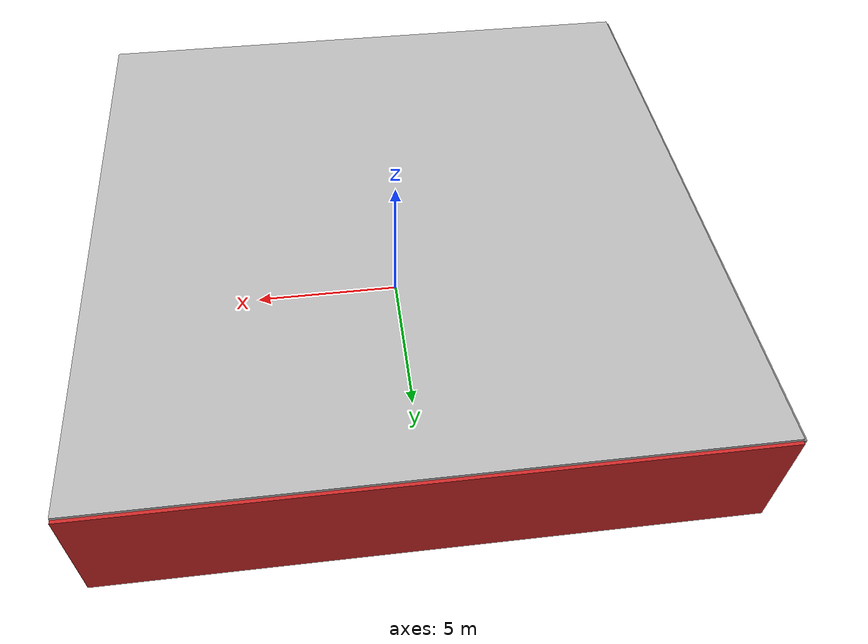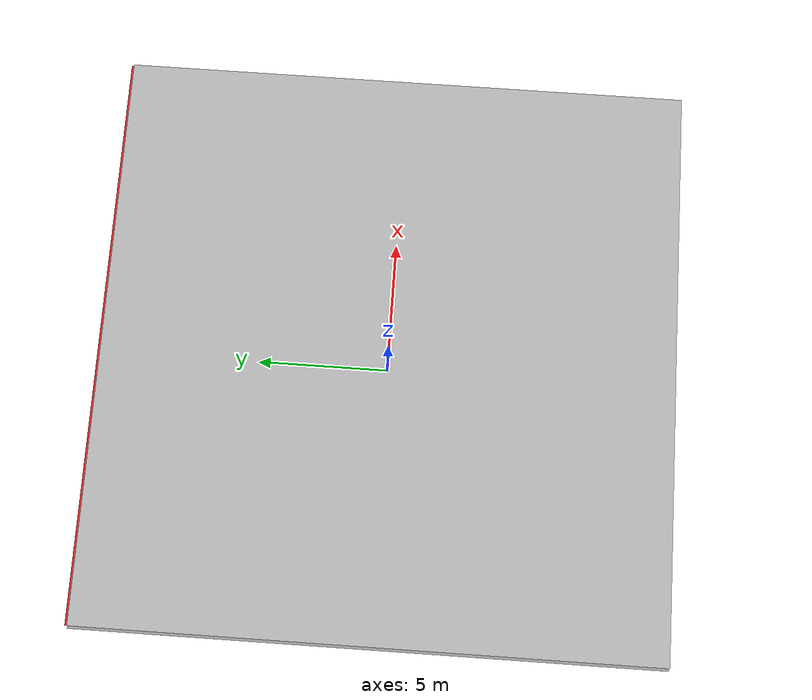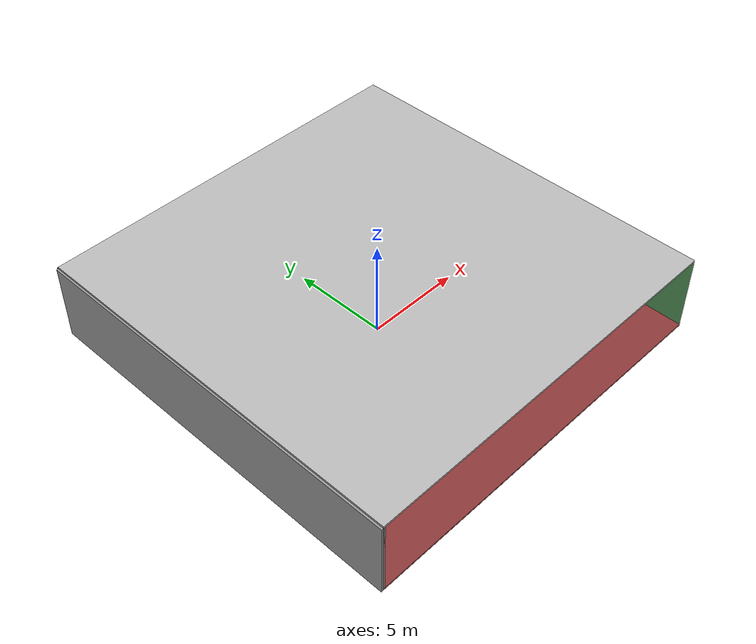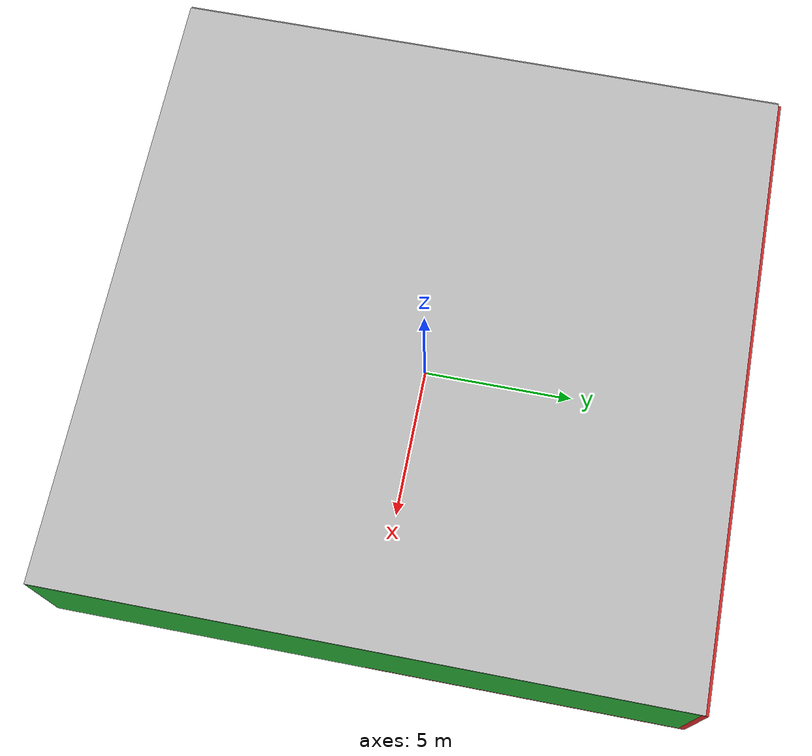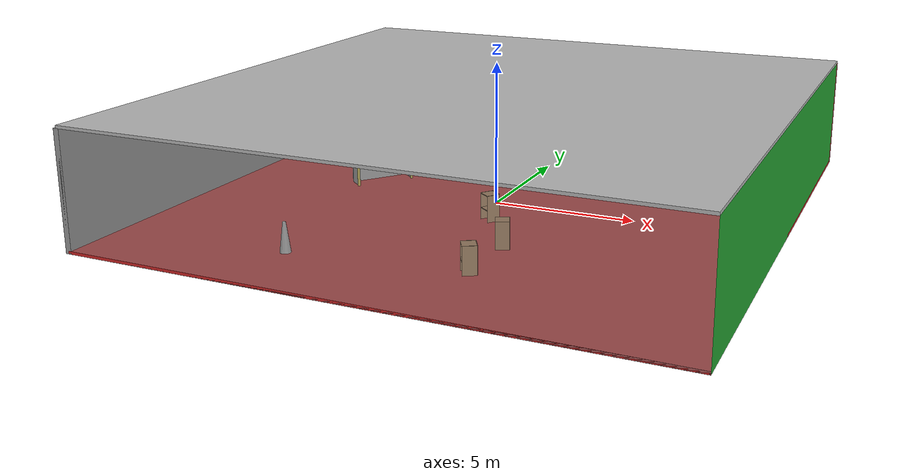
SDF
<sdf version="1.4">
 <world name="default">
  <physics type="ode">
   <max_step_size>0.001</max_step_size>
   <real_time_factor>1</real_time_factor>
   <real_time_update_rate>1000</real_time_update_rate>
   <gravity>0 0 -9.8</gravity>
  </physics>
  <scene><ambient>0.4 0.4 0.4 1</ambient><background>0.7 0.7 0.7 1</background><shadows>1</shadows></scene>
  <model name="Surrounding">
   <static>1</static>
   <link name="Ceiling">
    <collision name="Ceiling_Collision"><geometry><box><size>20 20 0.1</size></box></geometry></collision>
    <visual name="Ceiling_Visual">
     <geometry><box><size>20 20 0.1</size></box></geometry>
     <material>
      <script><uri>file://media/materials/scripts/gazebo.material</uri><name>Gazebo/PioneerBody</name></script>
     </material>
    </visual>
    <pose>0 0 4.05 0 0 0</pose>
   </link>
   <link name="Wall_South">
    <collision name="Wall_South_Collision">
     <geometry><box><size>20 0 4</size></box></geometry>
     <pose>0 0 2 0 -0 0</pose>
    </collision>
    <visual name="Wall_South_Visual">
     <pose>0 0 2 0 -0 0</pose>
     <geometry><box><size>20 0 4</size></box></geometry>
     <material>
      <script><uri>file://media/materials/scripts/gazebo.material</uri><name>Gazebo/GreyTransparent</name></script>
     </material>
    </visual>
    <velocity_decay><linear>0</linear><angular>0</angular></velocity_decay>
    <pose>0 -10 0 0 -0 0</pose>
   </link>
   <link name="Wall_East">
    <collision name="Wall_21_Collision">
     <geometry><box><size>20 0 4</size></box></geometry>
     <pose>0 0 2 0 -0 0</pose>
    </collision>
    <visual name="Wall_21_Visual">
     <pose>0 0 2 0 -0 0</pose>
     <geometry><box><size>20 0 4</size></box></geometry>
     <material>
      <script><uri>file://media/materials/scripts/gazebo.material</uri><name>Gazebo/Green</name></script>
     </material>
    </visual>
    <velocity_decay><linear>0</linear><angular>0</angular></velocity_decay>
    <pose>10 0 0 0 -0 1.5708</pose>
   </link>
   <link name="Wall_North">
    <collision name="Wall_22_Collision">
     <geometry><box><size>20 0.2 4</size></box></geometry>
     <pose>0 0 2 0 -0 0</pose>
    </collision>
    <visual name="Wall_22_Visual">
     <pose>0 0 2 0 -0 0</pose>
     <geometry><box><size>20 0.2 4</size></box></geometry>
     <material>
      <script><uri>file://media/materials/scripts/gazebo.material</uri><name>Gazebo/RedBright</name></script>
     </material>
    </visual>
    <velocity_decay><linear>0</linear><angular>0</angular></velocity_decay>
    <pose>0 10 0 0 -0 0</pose>
   </link>
   <link name="Wall_West">
    <collision name="Wall_23_Collision">
     <geometry><box><size>20 0.2 4</size></box></geometry>
     <pose>0 0 2 0 -0 0</pose>
    </collision>
    <visual name="Wall_23_Visual">
     <pose>0 0 2 0 -0 0</pose>
     <geometry><box><size>20 0.2 4</size></box></geometry>
     <material>
      <script><uri>file://media/materials/scripts/gazebo.material</uri><name>Gazebo/Grey</name></script>
     </material>
    </visual>
    <velocity_decay><linear>0</linear><angular>0</angular></velocity_decay>
    <pose>-10 0 0 0 0 -1.5708</pose>
   </link>
   <link name="Ground_link">
    <collision name="collision">
     <pose>0 0 .05 0 -0 0</pose>
     <geometry><box><size>20 20 0.1</size></box></geometry>
    </collision>
    <visual name="visual">
     <pose>0 0 .05 0 -0 0</pose>
     <geometry><box><size>20 20 0.1</size></box></geometry>
     <material>
      <script><uri>file://media/materials/scripts/gazebo.material</uri><name>Gazebo/Red</name></script>
     </material>
    </visual>
   </link>
   <static>1</static>
  </model>
  <spherical_coordinates>
   <surface_model>EARTH_WGS84</surface_model>
   <latitude_deg>0</latitude_deg>
   <longitude_deg>0</longitude_deg>
   <elevation>0</elevation>
   <heading_deg>0</heading_deg>
  </spherical_coordinates>
  <light name="lightball_0" type="diffuse">
   <diffuse>0.8 0.8 0.8 1</diffuse>
   <specular>0.2 0.2 0.2 1</specular>
   <attenuation>
    <range>100</range>
    <constant>0.7</constant>
    <linear>0.01</linear>
    <quadratic>0.001</quadratic>
   </attenuation>
   <direction>-0.5 0.1 -0.9</direction>
   <pose>-3.06103035149 -0.696313234479 3.22025920845 0 0 0</pose>
  </light>
  <light name="lightball_1" type="diffuse">
   <diffuse>0.8 0.8 0.8 1</diffuse>
   <specular>0.2 0.2 0.2 1</specular>
   <attenuation>
    <range>100</range>
    <constant>0.7</constant>
    <linear>0.01</linear>
    <quadratic>0.001</quadratic>
   </attenuation>
   <direction>-0.5 0.1 -0.9</direction>
   <pose>1.01758386504 9.75574762178 1.40313017671 0 0 0</pose>
  </light>
  <light name="lightball_2" type="diffuse">
   <diffuse>0.8 0.8 0.8 1</diffuse>
   <specular>0.2 0.2 0.2 1</specular>
   <attenuation>
    <range>100</range>
    <constant>0.7</constant>
    <linear>0.01</linear>
    <quadratic>0.001</quadratic>
   </attenuation>
   <direction>-0.5 0.1 -0.9</direction>
   <pose>-8.62487794483 6.98304111848 2.88955154263 0 0 0</pose>
  </light>
  <light name="lightball_3" type="diffuse">
   <diffuse>0.8 0.8 0.8 1</diffuse>
   <specular>0.2 0.2 0.2 1</specular>
   <attenuation>
    <range>100</range>
    <constant>0.7</constant>
    <linear>0.01</linear>
    <quadratic>0.001</quadratic>
   </attenuation>
   <direction>-0.5 0.1 -0.9</direction>
   <pose>-4.32149297782 2.42969395952 2.85858293861 0 0 0</pose>
  </light>
  <light name="lightball_4" type="diffuse">
   <diffuse>0.8 0.8 0.8 1</diffuse>
   <specular>0.2 0.2 0.2 1</specular>
   <attenuation>
    <range>100</range>
    <constant>0.7</constant>
    <linear>0.01</linear>
    <quadratic>0.001</quadratic>
   </attenuation>
   <direction>-0.5 0.1 -0.9</direction>
   <pose>-9.11413728652 3.82313294082 3.32931423854 0 0 0</pose>
  </light>
  <light name="lightball_5" type="diffuse">
   <diffuse>0.8 0.8 0.8 1</diffuse>
   <specular>0.2 0.2 0.2 1</specular>
   <attenuation>
    <range>100</range>
    <constant>0.7</constant>
    <linear>0.01</linear>
    <quadratic>0.001</quadratic>
   </attenuation>
   <direction>-0.5 0.1 -0.9</direction>
   <pose>-9.11621606208 5.59128462698 3.58940871523 0 0 0</pose>
  </light>
  <light name="lightball_6" type="diffuse">
   <diffuse>0.8 0.8 0.8 1</diffuse>
   <specular>0.2 0.2 0.2 1</specular>
   <attenuation>
    <range>100</range>
    <constant>0.7</constant>
    <linear>0.01</linear>
    <quadratic>0.001</quadratic>
   </attenuation>
   <direction>-0.5 0.1 -0.9</direction>
   <pose>2.89280802073 -6.96516160631 1.07848024122 0 0 0</pose>
  </light>
  <light name="lightball_7" type="diffuse">
   <diffuse>0.8 0.8 0.8 1</diffuse>
   <specular>0.2 0.2 0.2 1</specular>
   <attenuation>
    <range>100</range>
    <constant>0.7</constant>
    <linear>0.01</linear>
    <quadratic>0.001</quadratic>
   </attenuation>
   <direction>-0.5 0.1 -0.9</direction>
   <pose>5.58113693185 0.649460855954 3.59768630294 0 0 0</pose>
  </light>
  <light name="lightball_8" type="diffuse">
   <diffuse>0.8 0.8 0.8 1</diffuse>
   <specular>0.2 0.2 0.2 1</specular>
   <attenuation>
    <range>100</range>
    <constant>0.7</constant>
    <linear>0.01</linear>
    <quadratic>0.001</quadratic>
   </attenuation>
   <direction>-0.5 0.1 -0.9</direction>
   <pose>0.939963295395 8.74595585687 2.10680637629 0 0 0</pose>
  </light>
  <include>
   <uri>model://construction_cone</uri>
   <pose>-3.82947414924 -7.36905018939 0 0 0 0.00452178743106</pose>
  </include>
  <include>
   <uri>model://robocup_3Dsim_goal</uri>
   <pose>-4.66383905695 0.353288076339 0 0 0 2.48058453325</pose>
  </include>
  <include>
   <uri>model://robocup_3Dsim_goal</uri>
   <pose>-4.75234987303 4.92218016931 0 0 0 3.05553623328</pose>
  </include>
  <include>
   <uri>model://construction_cone</uri>
   <pose>-0.350860448906 2.0641451617 0 0 0 2.30307726985</pose>
  </include>
  <include><uri>model://cabinet</uri><pose>-0.562080968622 8.43715409309 0 0 0 1.95578874032</pose></include>
  <include><uri>model://cabinet</uri><pose>2.04332487669 -6.63342321658 0 0 0 0.543215005761</pose></include>
  <include><uri>model://cabinet</uri><pose>2.08668325511 -4.30323451596 0 0 0 0.411984267087</pose></include>
  <include><uri>model://cabinet</uri><pose>0.660133323026 -2.04630309994 0 0 0 0.924608156342</pose></include>
  <include>
   <uri>model://robocup_3Dsim_goal</uri>
   <pose>3.56662667392 4.20205543144 0 0 0 1.29011490091</pose>
  </include>
  <include><uri>model://table</uri><pose>7.48479770078 8.47360501052 0 0 0 0.458415060221</pose></include>
 </world>
</sdf>

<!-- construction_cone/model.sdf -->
<sdf version="1.5">
  <model name="Construction Cone">
    <link name="link">
      <collision name="collision">
        <geometry>
          <mesh>
            <scale>10 10 10</scale>
            <uri>file://isr-testbed/construction_cone/meshes/construction_cone.dae</uri>
          </mesh>
        </geometry>
      </collision>
      <visual name="visual">
        <geometry>
          <mesh>
            <scale>10 10 10</scale>
            <uri>file://isr-testbed/construction_cone/meshes/construction_cone.dae</uri>
          </mesh>
        </geometry>
      </visual>
    </link>
  </model>
</sdf>

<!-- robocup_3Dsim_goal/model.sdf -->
<sdf version="1.5">
  <model name="robocup_3d_goal">
    <static>true</static>
    <link name="left_post">
      <pose>0 1.05 0.45 0 0 0</pose>
      <collision name="collision">
        <geometry>
          <cylinder>
            <radius>0.05</radius>
            <length>0.9</length>
          </cylinder>
        </geometry>
      </collision>
      <visual name="visual">
        <geometry>
          <cylinder>
            <radius>0.05</radius>
            <length>0.9</length>
          </cylinder>
        </geometry>
        <material>
          <script>
            <uri>file://media/materials/scripts/gazebo.material</uri>
            <name>Gazebo/ZincYellow</name>
          </script>
        </material>
      </visual>
    </link>
    <link name="left_support_horiz_lower">
      <pose>0.30 1.05 0.01 0 0 0</pose>
      <collision name="collision">
        <geometry>
          <box>
            <size>0.50 0.02 0.02</size>
          </box>
        </geometry>
      </collision>
      <visual name="visual">
        <geometry>
          <box>
            <size>0.50 0.02 0.02</size>
          </box>
        </geometry>
        <material>
          <script>
            <uri>file://media/materials/scripts/gazebo.material</uri>
            <name>Gazebo/White</name>
          </script>
        </material>
      </visual>
    </link>
    <link name="left_support_horiz_upper">
      <pose>0.30 1.05 0.79 0 0 0</pose>
      <collision name="collision">
        <geometry>
          <box>
            <size>0.50 0.02 0.02</size>
          </box>
        </geometry>
      </collision>
      <visual name="visual">
        <geometry>
          <box>
            <size>0.50 0.02 0.02</size>
          </box>
        </geometry>
        <material>
          <script>
            <uri>file://media/materials/scripts/gazebo.material</uri>
            <name>Gazebo/White</name>
          </script>
        </material>
      </visual>
    </link>
    <link name="left_support_vertical">
      <pose>0.56 1.05 0.4 0 1.5708 0</pose>
      <collision name="collision">
        <geometry>
          <box>
            <size>0.80 0.02 0.02</size>
          </box>
        </geometry>
      </collision>
      <visual name="visual">
        <geometry>
          <box>
            <size>0.80 0.02 0.02</size>
          </box>
        </geometry>
        <material>
          <script>
            <uri>file://media/materials/scripts/gazebo.material</uri>
            <name>Gazebo/White</name>
          </script>
        </material>
      </visual>
    </link>
    <link name="right_support_horiz_lower">
      <pose>0.30 -1.05 0.01 0 0 0</pose>
      <collision name="collision">
        <geometry>
          <box>
            <size>0.50 0.02 0.02</size>
          </box>
        </geometry>
      </collision>
      <visual name="visual">
        <geometry>
          <box>
            <size>0.50 0.02 0.02</size>
          </box>
        </geometry>
        <material>
          <script>
            <uri>file://media/materials/scripts/gazebo.material</uri>
            <name>Gazebo/White</name>
          </script>
        </material>
      </visual>
    </link>
    <link name="right_support_horiz_upper">
      <pose>0.30 -1.05 0.79 0 0 0</pose>
      <collision name="collision">
        <geometry>
          <box>
            <size>0.50 0.02 0.02</size>
          </box>
        </geometry>
      </collision>
      <visual name="visual">
        <geometry>
          <box>
            <size>0.50 0.02 0.02</size>
          </box>
        </geometry>
        <material>
          <script>
            <uri>file://media/materials/scripts/gazebo.material</uri>
            <name>Gazebo/White</name>
          </script>
        </material>
      </visual>
    </link>
    <link name="right_support_vertical">
      <pose>0.56 -1.05 0.4 0 1.5708 0</pose>
      <collision name="collision">
        <geometry>
          <box>
            <size>0.80 0.02 0.02</size>
          </box>
        </geometry>
      </collision>
      <visual name="visual">
        <geometry>
          <box>
            <size>0.80 0.02 0.02</size>
          </box>
        </geometry>
        <material>
          <script>
            <uri>file://media/materials/scripts/gazebo.material</uri>
            <name>Gazebo/White</name>
          </script>
        </material>
      </visual>
    </link>
    <link name="center_support_horiz_lower">
      <pose>0.56 0 0.01 0 1.5708 0</pose>
      <collision name="collision">
        <geometry>
          <box>
            <size>0.02 2.08 0.02</size>
          </box>
        </geometry>
      </collision>
      <visual name="visual">
        <geometry>
          <box>
            <size>0.02 2.08 0.02</size>
          </box>
        </geometry>
        <material>
          <script>
            <uri>file://media/materials/scripts/gazebo.material</uri>
            <name>Gazebo/White</name>
          </script>
        </material>
      </visual>
    </link>
    <link name="center_support_horiz_upper">
      <pose>0.56 0 0.79 0 1.5708 0</pose>
      <collision name="collision">
        <geometry>
          <box>
            <size>0.02 2.08 0.02</size>
          </box>
        </geometry>
      </collision>
      <visual name="visual">
        <geometry>
          <box>
            <size>0.02 2.08 0.02</size>
          </box>
        </geometry>
        <material>
          <script>
            <uri>file://media/materials/scripts/gazebo.material</uri>
            <name>Gazebo/White</name>
          </script>
        </material>
      </visual>
    </link>
    <link name="right_post">
      <pose>0 -1.05 0.45 0 0 0</pose>
      <collision name="collision">
        <geometry>
          <cylinder>
            <radius>0.05</radius>
            <length>0.9</length>
          </cylinder>
        </geometry>
      </collision>
      <visual name="visual">
        <geometry>
          <cylinder>
            <radius>0.05</radius>
            <length>0.9</length>
          </cylinder>
        </geometry>
        <material>
          <script>
            <uri>file://media/materials/scripts/gazebo.material</uri>
            <name>Gazebo/ZincYellow</name>
          </script>
        </material>
      </visual>
    </link>
    <link name="crossbar">
      <pose>0 0 0.85 1.57 1.57 0</pose>
      <collision name="collision">
        <geometry>
          <cylinder>
            <radius>0.05</radius>
            <length>2.0</length>
          </cylinder>
        </geometry>
      </collision>
      <visual name="visual">
        <geometry>
          <cylinder>
            <radius>0.05</radius>
            <length>2.0</length>
          </cylinder>
        </geometry>
        <material>
          <script>
            <uri>file://media/materials/scripts/gazebo.material</uri>
            <name>Gazebo/ZincYellow</name>
          </script>
        </material>
      </visual>
    </link>
    <link name="center_net">
      <pose>0.56 0 0.40 0 0 0</pose>
      <collision name="collision">
        <geometry>
          <box>
            <size>0.01 2.1 0.80</size>
          </box>
        </geometry>
      </collision>
      <visual name="visual">
        <geometry>
          <box>
            <size>0.01 2.1 0.80</size>
          </box>
        </geometry>
        <material>
          <script>
            <uri>model://../model_source/models/robocup09_spl_field/materials/scripts/</uri>
            <uri>model://../model_source/models/robocup09_spl_field/materials/textures/</uri>
            <name>RoboCup/Net</name>
          </script>
        </material>
      </visual>
    </link>
    <link name="left_net">
      <pose>0.30 1.05 0.40 0 0 0</pose>
      <collision name="collision">
        <geometry>
          <box>
            <size>0.50 0.01 0.76</size>
          </box>
        </geometry>
      </collision>
      <visual name="visual">
        <geometry>
          <box>
            <size>0.50 0.01 0.76</size>
          </box>
        </geometry>
        <material>
          <script>
            <uri>model://../model_source/models/robocup09_spl_field/materials/scripts/</uri>
            <uri>model://../model_source/models/robocup09_spl_field/materials/textures/</uri>
            <name>RoboCup/Net</name>
          </script>
        </material>
      </visual>
    </link>
    <link name="right_net">
      <pose>0.30 -1.05 0.40 0 0 0</pose>
      <collision name="collision">
        <geometry>
          <box>
            <size>0.50 0.01 0.76</size>
          </box>
        </geometry>
      </collision>
      <visual name="visual">
        <geometry>
          <box>
            <size>0.50 0.01 0.76</size>
          </box>
        </geometry>
        <material>
          <script>
            <uri>model://../model_source/models/robocup09_spl_field/materials/scripts/</uri>
            <uri>model://../model_source/models/robocup09_spl_field/materials/textures/</uri>
            <name>RoboCup/Net</name>
          </script>
        </material>
      </visual>
    </link>
  </model>
</sdf>

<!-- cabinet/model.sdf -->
<sdf version="1.5">
  <model name="cabinet">
    <static>true</static>
    <link name="cabinet_bottom_plate">
      <inertial>
        <pose>0 0 -1 0 0 0</pose>
        <inertia>
          <ixx>2.050000</ixx>
          <ixy>0</ixy>
          <ixz>0</ixz>
          <iyy>2.050000</iyy>
          <iyz>0</iyz>
          <izz>2.050000</izz>
        </inertia>
        <mass>25.000000</mass>
      </inertial>
      <collision name="cabinet_bottom_plate_geom">
        <pose>0 0 0.010000 0 0 0</pose>
        <geometry>
          <box>
            <size>0.450000 0.450000 0.020000</size>
          </box>
        </geometry>
      </collision>
      <visual name="cabinet_bottom_plate_geom_visual">
        <pose>0 0 0.010000 0 0 0</pose>
        <geometry>
          <box>
            <size>0.450000 0.450000 0.020000</size>
          </box>
        </geometry>
        <material>
          <script>
            <uri>model://media/materials/scripts/gazebo.material</uri>
            <name>Gazebo/Wood</name>
          </script>
        </material>
      </visual>
      <collision name="cabinet_bottom_plate_geom_cabinet_back_plate">
        <pose>0.235000 0 0.510000 0 0 0</pose>
        <geometry>
          <box>
            <size>0.020000 0.450000 1.020000</size>
          </box>
        </geometry>
      </collision>
      <visual name="cabinet_bottom_plate_geom_cabinet_back_plate_visual">
        <pose>0.235000 0 0.510000 0 0 0</pose>
        <geometry>
          <box>
            <size>0.020000 0.450000 1.020000</size>
          </box>
        </geometry>
        <material>
          <script>
            <uri>model://media/materials/scripts/gazebo.material</uri>
            <name>Gazebo/Wood</name>
          </script>
        </material>
      </visual>
      <collision name="cabinet_bottom_plate_geom_cabinet_left_plate">
        <pose>0 0.235000 0.510000 0 0 0</pose>
        <geometry>
          <box>
            <size>0.450000 0.020000 1.020000</size>
          </box>
        </geometry>
      </collision>
      <visual name="cabinet_bottom_plate_geom_cabinet_left_plate_visual">
        <pose>0 0.235000 0.510000 0 0 0</pose>
        <geometry>
          <box>
            <size>0.450000 0.020000 1.020000</size>
          </box>
        </geometry>
        <material>
          <script>
            <uri>model://media/materials/scripts/gazebo.material</uri>
            <name>Gazebo/Wood</name>
          </script>
        </material>
      </visual>
      <collision name="cabinet_bottom_plate_geom_cabinet_middle_plate">
        <pose>0 0 0.510000 0 0 0</pose>
        <geometry>
          <box>
            <size>0.450000 0.450000 0.020000</size>
          </box>
        </geometry>
      </collision>
      <visual name="cabinet_bottom_plate_geom_cabinet_middle_plate_visual">
        <pose>0 0 0.510000 0 0 0</pose>
        <geometry>
          <box>
            <size>0.450000 0.450000 0.020000</size>
          </box>
        </geometry>
        <material>
          <script>
            <uri>model://media/materials/scripts/gazebo.material</uri>
            <name>Gazebo/Wood</name>
          </script>
        </material>
      </visual>
      <collision name="cabinet_bottom_plate_geom_cabinet_right_plate">
        <pose>0 -0.235000 0.510000 0 0 0</pose>
        <geometry>
          <box>
            <size>0.450000 0.020000 1.020000</size>
          </box>
        </geometry>
      </collision>
      <visual name="cabinet_bottom_plate_geom_cabinet_right_plate_visual">
        <pose>0 -0.235000 0.510000 0 0 0</pose>
        <geometry>
          <box>
            <size>0.450000 0.020000 1.020000</size>
          </box>
        </geometry>
        <material>
          <script>
            <uri>model://media/materials/scripts/gazebo.material</uri>
            <name>Gazebo/Wood</name>
          </script>
        </material>
      </visual>
      <collision name="cabinet_bottom_plate_geom_cabinet_top_plate">
        <pose>0 0 1.010000 0 0 0</pose>
        <geometry>
          <box>
            <size>0.450000 0.450000 0.020000</size>
          </box>
        </geometry>
      </collision>
      <visual name="cabinet_bottom_plate_geom_cabinet_top_plate_visual">
        <pose>0 0 1.010000 0 0 0</pose>
        <geometry>
          <box>
            <size>0.450000 0.450000 0.020000</size>
          </box>
        </geometry>
        <material>
          <script>
            <uri>model://media/materials/scripts/gazebo.material</uri>
            <name>Gazebo/Wood</name>
          </script>
        </material>
      </visual>
    </link>
  </model>
</sdf>

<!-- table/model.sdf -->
<sdf version="1.5">
  <model name="table">
    <static>true</static>
    <link name="link">
      <collision name="surface">
        <pose>0 0 1.0 0 0 0</pose>
        <geometry>
          <box>
            <size>1.5 0.8 0.03</size>
          </box>
        </geometry>
        <surface>
          <friction>
            <ode>
              <mu>0.6</mu>
              <mu2>0.6</mu2>
            </ode>
          </friction>
        </surface>
      </collision>
      <visual name="visual1">
        <pose>0 0 1.0 0 0 0</pose>
        <geometry>
          <box>
            <size>1.5 0.8 0.03</size>
          </box>
        </geometry>
        <material>
          <script>
            <uri>model://media/materials/scripts/gazebo.material</uri>
            <name>Gazebo/Wood</name>
          </script>
        </material>
      </visual>
      <collision name="front_left_leg">
        <pose>0.68 0.38 0.5 0 0 0</pose>
        <geometry>
          <cylinder>
            <radius>0.02</radius>
            <length>1.0</length>
          </cylinder>
        </geometry>
      </collision>
      <visual name="front_left_leg">
        <pose>0.68 0.38 0.5 0 0 0</pose>
        <geometry>
          <cylinder>
            <radius>0.02</radius>
            <length>1.0</length>
          </cylinder>
        </geometry>
        <material>
          <script>
            <uri>model://media/materials/scripts/gazebo.material</uri>
            <name>Gazebo/Grey</name>
          </script>
        </material>
      </visual>
      <collision name="front_right_leg">
        <pose>0.68 -0.38 0.5 0 0 0</pose>
        <geometry>
          <cylinder>
            <radius>0.02</radius>
            <length>1.0</length>
          </cylinder>
        </geometry>
      </collision>
      <visual name="front_right_leg">
        <pose>0.68 -0.38 0.5 0 0 0</pose>
        <geometry>
          <cylinder>
            <radius>0.02</radius>
            <length>1.0</length>
          </cylinder>
        </geometry>
        <material>
          <script>
            <uri>model://media/materials/scripts/gazebo.material</uri>
            <name>Gazebo/Grey</name>
          </script>
        </material>
      </visual>
      <collision name="back_right_leg">
        <pose>-0.68 -0.38 0.5 0 0 0</pose>
        <geometry>
          <cylinder>
            <radius>0.02</radius>
            <length>1.0</length>
          </cylinder>
        </geometry>
      </collision>
      <visual name="back_right_leg">
        <pose>-0.68 -0.38 0.5 0 0 0</pose>
        <geometry>
          <cylinder>
            <radius>0.02</radius>
            <length>1.0</length>
          </cylinder>
        </geometry>
        <material>
          <script>
            <uri>model://media/materials/scripts/gazebo.material</uri>
            <name>Gazebo/Grey</name>
          </script>
        </material>
      </visual>
      <collision name="back_left_leg">
        <pose>-0.68 0.38 0.5 0 0 0</pose>
        <geometry>
          <cylinder>
            <radius>0.02</radius>
            <length>1.0</length>
          </cylinder>
        </geometry>
      </collision>
      <visual name="back_left_leg">
        <pose>-0.68 0.38 0.5 0 0 0</pose>
        <geometry>
          <cylinder>
            <radius>0.02</radius>
            <length>1.0</length>
          </cylinder>
        </geometry>
        <material>
          <script>
            <uri>model://media/materials/scripts/gazebo.material</uri>
            <name>Gazebo/Grey</name>
          </script>
        </material>
      </visual>
    </link>
  </model>
</sdf>
